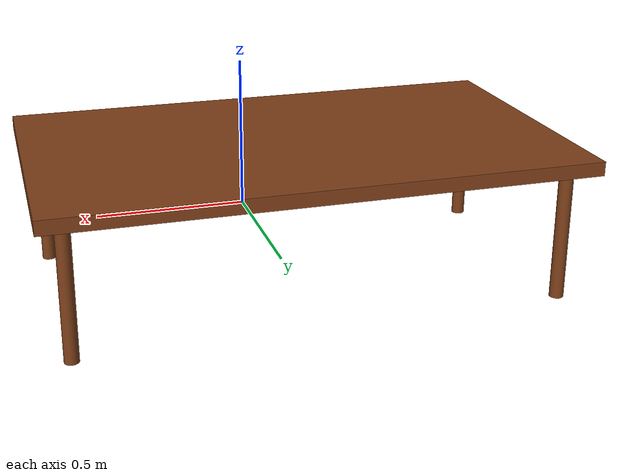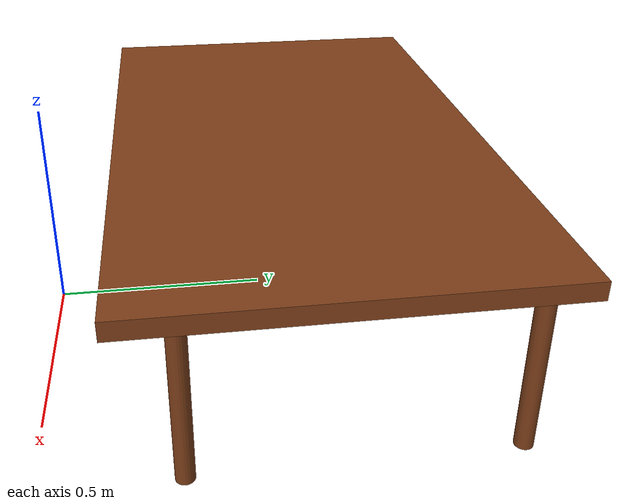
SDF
<?xml version="1.0" ?>
<sdf version="1.5">
  <model name="table">
    <static>true</static>
    <link name="link">
      <collision name="surface">
        <pose>0 0.6 0.4 0 0 0</pose>
        <geometry>
          <box>
            <size>1.5 0.875 0.04</size>
          </box>
        </geometry>
        <surface>
          <friction>
            <ode>
              <mu>0.6</mu>
              <mu2>0.6</mu2>
            </ode>
          </friction>
        </surface>
        <drake:proximity_properties>
          <drake:compliant_hydroelastic/>
          <drake:hydroelastic_modulus>1.0e6</drake:hydroelastic_modulus>
        </drake:proximity_properties>
      </collision>
      <visual name="visual1">
        <pose>0 0.6 0.4 0 0 0</pose>
        <geometry>
          <box>
            <size>1.5 0.875 0.04</size>
          </box>
        </geometry>
        <material>
          <ambient>0.5 0.25 0.1 1.0</ambient>
          <diffuse>0.5 0.25 0.1 1.0</diffuse>
        </material>
      </visual>
      <!-- Shortened legs to 0.4 meters -->
      <collision name="front_left_leg">
        <pose>0.68 0.9625 0.2 0 0 0</pose>
        <geometry>
          <cylinder>
            <radius>0.02</radius>
            <length>0.4</length>
          </cylinder>
        </geometry>
      </collision>
      <visual name="front_left_leg">
        <pose>0.68 0.9625 0.2 0 0 0</pose>
        <geometry>
          <cylinder>
            <radius>0.02</radius>
            <length>0.4</length>
          </cylinder>
        </geometry>
        <material>
          <ambient>0.5 0.25 0.1 1.0</ambient>
          <diffuse>0.5 0.25 0.1 1.0</diffuse>
        </material>
      </visual>
      <collision name="front_right_leg">
        <pose>0.68 0.2875 0.2 0 0 0</pose>
        <geometry>
          <cylinder>
            <radius>0.02</radius>
            <length>0.4</length>
          </cylinder>
        </geometry>
      </collision>
      <visual name="front_right_leg">
        <pose>0.68 0.2875 0.2 0 0 0</pose>
        <geometry>
          <cylinder>
            <radius>0.02</radius>
            <length>0.4</length>
          </cylinder>
        </geometry>
        <material>
          <ambient>0.5 0.25 0.1 1.0</ambient>
          <diffuse>0.5 0.25 0.1 1.0</diffuse>
        </material>
      </visual>
      <collision name="back_right_leg">
        <pose>-0.68 0.2875 0.2 0 0 0</pose>
        <geometry>
          <cylinder>
            <radius>0.02</radius>
            <length>0.4</length>
          </cylinder>
        </geometry>
      </collision>
      <visual name="back_right_leg">
        <pose>-0.68 0.2875 0.2 0 0 0</pose>
        <geometry>
          <cylinder>
            <radius>0.02</radius>
            <length>0.4</length>
          </cylinder>
        </geometry>
        <material>
          <ambient>0.5 0.25 0.1 1.0</ambient>
          <diffuse>0.5 0.25 0.1 1.0</diffuse>
        </material>
      </visual>
      <collision name="back_left_leg">
        <pose>-0.68 0.9625 0.2 0 0 0</pose>
        <geometry>
          <cylinder>
            <radius>0.02</radius>
            <length>0.4</length>
          </cylinder>
        </geometry>
      </collision>
      <visual name="back_left_leg">
        <pose>-0.68 0.9625 0.2 0 0 0</pose>
        <geometry>
          <cylinder>
            <radius>0.02</radius>
            <length>0.4</length>
          </cylinder>
        </geometry>
        <material>
          <ambient>0.5 0.25 0.1 1.0</ambient>
          <diffuse>0.5 0.25 0.1 1.0</diffuse>
        </material>
      </visual>
    </link>
  </model>
</sdf>
